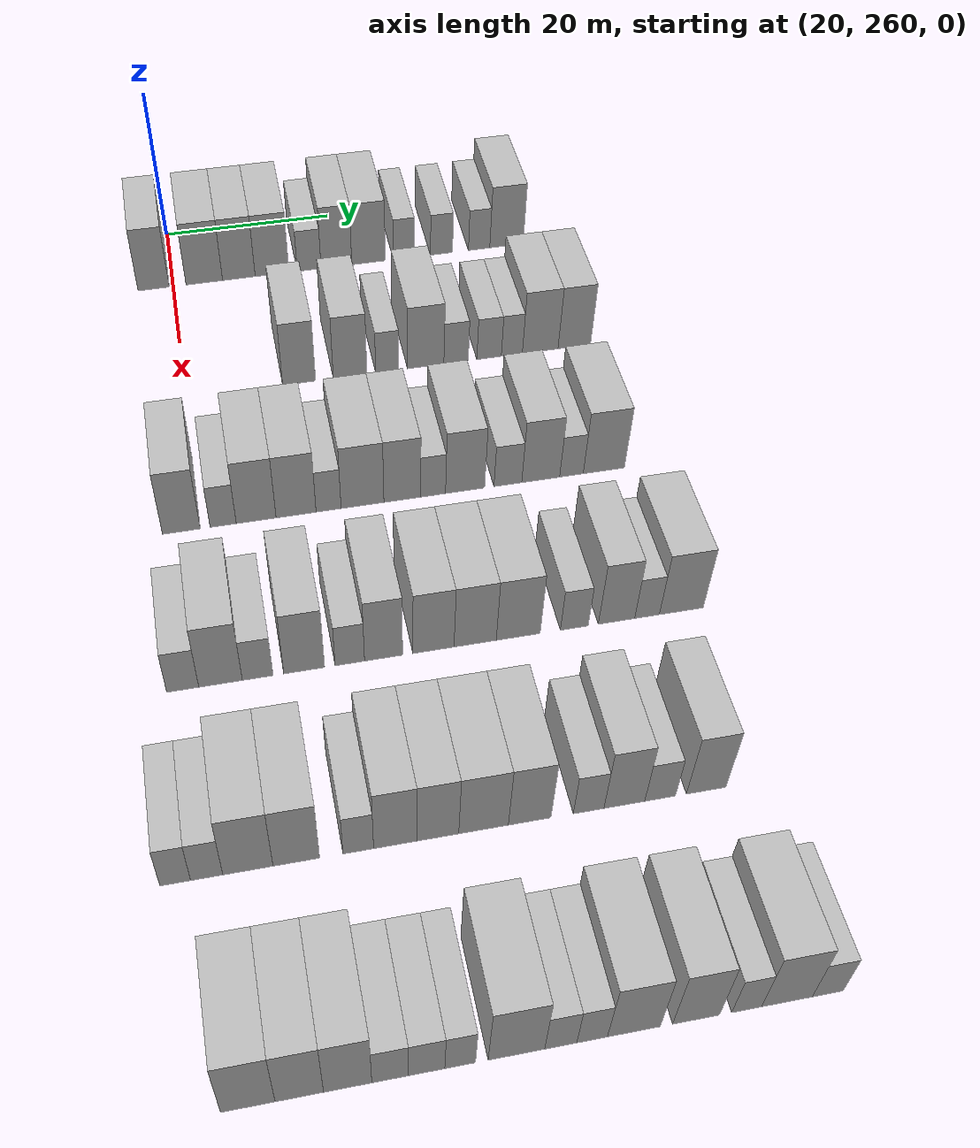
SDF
<sdf version="1.6">
 <world name="default">
  <model name="building_134">
   <static>1</static>
   <pose>25.0000 257.7047 0 0.000000 0.000000 0.000000</pose>
   <link name="link">
    <pose>0 0 4.50 0 0 0</pose>
    <collision name="collision"><geometry><box><size>10.0000 3.6983 9.0000</size></box></geometry></collision>
    <visual name="visual">
     <cast_shadows>0</cast_shadows>
     <geometry><box><size>10.0000 3.6983 9.0000</size></box></geometry>
     <material>
      <script>
       <uri>model://HANNAS_wall/materials/scripts</uri>
       <uri>model://HANNAS_wall/materials/textures</uri>
       <name>vrc/HANNAS_wall</name>
      </script>
     </material>
    </visual>
   </link>
  </model>
  <model name="building_135">
   <static>1</static>
   <pose>25.0000 263.7342 0 0.000000 0.000000 0.000000</pose>
   <link name="link">
    <pose>0 0 4.50 0 0 0</pose>
    <collision name="collision"><geometry><box><size>10.0000 4.3607 9.0000</size></box></geometry></collision>
    <visual name="visual">
     <cast_shadows>0</cast_shadows>
     <geometry><box><size>10.0000 4.3607 9.0000</size></box></geometry>
     <material>
      <script>
       <uri>model://HANNAS_wall/materials/scripts</uri>
       <uri>model://HANNAS_wall/materials/textures</uri>
       <name>vrc/HANNAS_wall</name>
      </script>
     </material>
    </visual>
   </link>
  </model>
  <model name="building_136">
   <static>1</static>
   <pose>25.0000 267.8749 0 0.000000 0.000000 0.000000</pose>
   <link name="link">
    <pose>0 0 4.50 0 0 0</pose>
    <collision name="collision"><geometry><box><size>10.0000 3.9206 9.0000</size></box></geometry></collision>
    <visual name="visual">
     <cast_shadows>0</cast_shadows>
     <geometry><box><size>10.0000 3.9206 9.0000</size></box></geometry>
     <material>
      <script>
       <uri>model://HANNAS_wall/materials/scripts</uri>
       <uri>model://HANNAS_wall/materials/textures</uri>
       <name>vrc/HANNAS_wall</name>
      </script>
     </material>
    </visual>
   </link>
  </model>
  <model name="building_137">
   <static>1</static>
   <pose>25.0000 271.8761 0 0.000000 0.000000 0.000000</pose>
   <link name="link">
    <pose>0 0 4.50 0 0 0</pose>
    <collision name="collision"><geometry><box><size>10.0000 4.0817 9.0000</size></box></geometry></collision>
    <visual name="visual">
     <cast_shadows>0</cast_shadows>
     <geometry><box><size>10.0000 4.0817 9.0000</size></box></geometry>
     <material>
      <script>
       <uri>model://HANNAS_wall/materials/scripts</uri>
       <uri>model://HANNAS_wall/materials/textures</uri>
       <name>vrc/HANNAS_wall</name>
      </script>
     </material>
    </visual>
   </link>
  </model>
  <model name="building_138">
   <static>1</static>
   <pose>25.0000 276.3675 0 0.000000 0.000000 0.000000</pose>
   <link name="link">
    <pose>0 0 3.00 0 0 0</pose>
    <collision name="collision"><geometry><box><size>10.0000 2.9012 6.0000</size></box></geometry></collision>
    <visual name="visual">
     <cast_shadows>0</cast_shadows>
     <geometry><box><size>10.0000 2.9012 6.0000</size></box></geometry>
     <material>
      <script>
       <uri>model://HANNAS_wall/materials/scripts</uri>
       <uri>model://HANNAS_wall/materials/textures</uri>
       <name>vrc/HANNAS_wall</name>
      </script>
     </material>
    </visual>
   </link>
  </model>
  <model name="building_139">
   <static>1</static>
   <pose>25.0000 279.6939 0 0.000000 0.000000 0.000000</pose>
   <link name="link">
    <pose>0 0 4.50 0 0 0</pose>
    <collision name="collision"><geometry><box><size>10.0000 3.7517 9.0000</size></box></geometry></collision>
    <visual name="visual">
     <cast_shadows>0</cast_shadows>
     <geometry><box><size>10.0000 3.7517 9.0000</size></box></geometry>
     <material>
      <script>
       <uri>model://HANNAS_wall/materials/scripts</uri>
       <uri>model://HANNAS_wall/materials/textures</uri>
       <name>vrc/HANNAS_wall</name>
      </script>
     </material>
    </visual>
   </link>
  </model>
  <model name="building_140">
   <static>1</static>
   <pose>25.0000 283.6290 0 0.000000 0.000000 0.000000</pose>
   <link name="link">
    <pose>0 0 4.50 0 0 0</pose>
    <collision name="collision"><geometry><box><size>10.0000 4.1184 9.0000</size></box></geometry></collision>
    <visual name="visual">
     <cast_shadows>0</cast_shadows>
     <geometry><box><size>10.0000 4.1184 9.0000</size></box></geometry>
     <material>
      <script>
       <uri>model://HANNAS_wall/materials/scripts</uri>
       <uri>model://HANNAS_wall/materials/textures</uri>
       <name>vrc/HANNAS_wall</name>
      </script>
     </material>
    </visual>
   </link>
  </model>
  <model name="building_141">
   <static>1</static>
   <pose>25.0000 287.9828 0 0.000000 0.000000 0.000000</pose>
   <link name="link">
    <pose>0 0 3.00 0 0 0</pose>
    <collision name="collision"><geometry><box><size>10.0000 2.5893 6.0000</size></box></geometry></collision>
    <visual name="visual">
     <cast_shadows>0</cast_shadows>
     <geometry><box><size>10.0000 2.5893 6.0000</size></box></geometry>
     <material>
      <script>
       <uri>model://HANNAS_wall/materials/scripts</uri>
       <uri>model://HANNAS_wall/materials/textures</uri>
       <name>vrc/HANNAS_wall</name>
      </script>
     </material>
    </visual>
   </link>
  </model>
  <model name="building_142">
   <static>1</static>
   <pose>25.0000 292.6498 0 0.000000 0.000000 0.000000</pose>
   <link name="link">
    <pose>0 0 3.00 0 0 0</pose>
    <collision name="collision"><geometry><box><size>10.0000 2.7445 6.0000</size></box></geometry></collision>
    <visual name="visual">
     <cast_shadows>0</cast_shadows>
     <geometry><box><size>10.0000 2.7445 6.0000</size></box></geometry>
     <material>
      <script>
       <uri>model://HANNAS_wall/materials/scripts</uri>
       <uri>model://HANNAS_wall/materials/textures</uri>
       <name>vrc/HANNAS_wall</name>
      </script>
     </material>
    </visual>
   </link>
  </model>
  <model name="building_143">
   <static>1</static>
   <pose>25.0000 297.3599 0 0.000000 0.000000 0.000000</pose>
   <link name="link">
    <pose>0 0 3.00 0 0 0</pose>
    <collision name="collision"><geometry><box><size>10.0000 2.6757 6.0000</size></box></geometry></collision>
    <visual name="visual">
     <cast_shadows>0</cast_shadows>
     <geometry><box><size>10.0000 2.6757 6.0000</size></box></geometry>
     <material>
      <script>
       <uri>model://HANNAS_wall/materials/scripts</uri>
       <uri>model://HANNAS_wall/materials/textures</uri>
       <name>vrc/HANNAS_wall</name>
      </script>
     </material>
    </visual>
   </link>
  </model>
  <model name="building_144">
   <static>1</static>
   <pose>25.0000 300.7931 0 0.000000 0.000000 0.000000</pose>
   <link name="link">
    <pose>0 0 4.50 0 0 0</pose>
    <collision name="collision"><geometry><box><size>10.0000 4.1907 9.0000</size></box></geometry></collision>
    <visual name="visual">
     <cast_shadows>0</cast_shadows>
     <geometry><box><size>10.0000 4.1907 9.0000</size></box></geometry>
     <material>
      <script>
       <uri>model://HANNAS_wall/materials/scripts</uri>
       <uri>model://HANNAS_wall/materials/textures</uri>
       <name>vrc/HANNAS_wall</name>
      </script>
     </material>
    </visual>
   </link>
  </model>
  <model name="building_303">
   <static>1</static>
   <pose>44.0000 272.5692 0 0.000000 0.000000 0.000000</pose>
   <link name="link">
    <pose>0 0 4.50 0 0 0</pose>
    <collision name="collision"><geometry><box><size>10.0000 3.7088 9.0000</size></box></geometry></collision>
    <visual name="visual">
     <cast_shadows>0</cast_shadows>
     <geometry><box><size>10.0000 3.7088 9.0000</size></box></geometry>
     <material>
      <script>
       <uri>model://HANNAS_wall/materials/scripts</uri>
       <uri>model://HANNAS_wall/materials/textures</uri>
       <name>vrc/HANNAS_wall</name>
      </script>
     </material>
    </visual>
   </link>
  </model>
  <model name="building_304">
   <static>1</static>
   <pose>44.0000 278.3253 0 0.000000 0.000000 0.000000</pose>
   <link name="link">
    <pose>0 0 4.50 0 0 0</pose>
    <collision name="collision"><geometry><box><size>10.0000 3.8035 9.0000</size></box></geometry></collision>
    <visual name="visual">
     <cast_shadows>0</cast_shadows>
     <geometry><box><size>10.0000 3.8035 9.0000</size></box></geometry>
     <material>
      <script>
       <uri>model://HANNAS_wall/materials/scripts</uri>
       <uri>model://HANNAS_wall/materials/textures</uri>
       <name>vrc/HANNAS_wall</name>
      </script>
     </material>
    </visual>
   </link>
  </model>
  <model name="building_305">
   <static>1</static>
   <pose>44.0000 282.5472 0 0.000000 0.000000 0.000000</pose>
   <link name="link">
    <pose>0 0 3.00 0 0 0</pose>
    <collision name="collision"><geometry><box><size>10.0000 2.6402 6.0000</size></box></geometry></collision>
    <visual name="visual">
     <cast_shadows>0</cast_shadows>
     <geometry><box><size>10.0000 2.6402 6.0000</size></box></geometry>
     <material>
      <script>
       <uri>model://HANNAS_wall/materials/scripts</uri>
       <uri>model://HANNAS_wall/materials/textures</uri>
       <name>vrc/HANNAS_wall</name>
      </script>
     </material>
    </visual>
   </link>
  </model>
  <model name="building_306">
   <static>1</static>
   <pose>44.0000 286.9544 0 0.000000 0.000000 0.000000</pose>
   <link name="link">
    <pose>0 0 4.50 0 0 0</pose>
    <collision name="collision"><geometry><box><size>10.0000 4.1742 9.0000</size></box></geometry></collision>
    <visual name="visual">
     <cast_shadows>0</cast_shadows>
     <geometry><box><size>10.0000 4.1742 9.0000</size></box></geometry>
     <material>
      <script>
       <uri>model://HANNAS_wall/materials/scripts</uri>
       <uri>model://HANNAS_wall/materials/textures</uri>
       <name>vrc/HANNAS_wall</name>
      </script>
     </material>
    </visual>
   </link>
  </model>
  <model name="building_307">
   <static>1</static>
   <pose>44.0000 290.4517 0 0.000000 0.000000 0.000000</pose>
   <link name="link">
    <pose>0 0 3.00 0 0 0</pose>
    <collision name="collision"><geometry><box><size>10.0000 2.8204 6.0000</size></box></geometry></collision>
    <visual name="visual">
     <cast_shadows>0</cast_shadows>
     <geometry><box><size>10.0000 2.8204 6.0000</size></box></geometry>
     <material>
      <script>
       <uri>model://HANNAS_wall/materials/scripts</uri>
       <uri>model://HANNAS_wall/materials/textures</uri>
       <name>vrc/HANNAS_wall</name>
      </script>
     </material>
    </visual>
   </link>
  </model>
  <model name="building_308">
   <static>1</static>
   <pose>44.0000 294.2804 0 0.000000 0.000000 0.000000</pose>
   <link name="link">
    <pose>0 0 3.00 0 0 0</pose>
    <collision name="collision"><geometry><box><size>10.0000 2.8369 6.0000</size></box></geometry></collision>
    <visual name="visual">
     <cast_shadows>0</cast_shadows>
     <geometry><box><size>10.0000 2.8369 6.0000</size></box></geometry>
     <material>
      <script>
       <uri>model://HANNAS_wall/materials/scripts</uri>
       <uri>model://HANNAS_wall/materials/textures</uri>
       <name>vrc/HANNAS_wall</name>
      </script>
     </material>
    </visual>
   </link>
  </model>
  <model name="building_309">
   <static>1</static>
   <pose>44.0000 296.9283 0 0.000000 0.000000 0.000000</pose>
   <link name="link">
    <pose>0 0 3.00 0 0 0</pose>
    <collision name="collision"><geometry><box><size>10.0000 2.4589 6.0000</size></box></geometry></collision>
    <visual name="visual">
     <cast_shadows>0</cast_shadows>
     <geometry><box><size>10.0000 2.4589 6.0000</size></box></geometry>
     <material>
      <script>
       <uri>model://HANNAS_wall/materials/scripts</uri>
       <uri>model://HANNAS_wall/materials/textures</uri>
       <name>vrc/HANNAS_wall</name>
      </script>
     </material>
    </visual>
   </link>
  </model>
  <model name="building_310">
   <static>1</static>
   <pose>44.0000 300.2491 0 0.000000 0.000000 0.000000</pose>
   <link name="link">
    <pose>0 0 4.50 0 0 0</pose>
    <collision name="collision"><geometry><box><size>10.0000 4.1828 9.0000</size></box></geometry></collision>
    <visual name="visual">
     <cast_shadows>0</cast_shadows>
     <geometry><box><size>10.0000 4.1828 9.0000</size></box></geometry>
     <material>
      <script>
       <uri>model://HANNAS_wall/materials/scripts</uri>
       <uri>model://HANNAS_wall/materials/textures</uri>
       <name>vrc/HANNAS_wall</name>
      </script>
     </material>
    </visual>
   </link>
  </model>
  <model name="building_311">
   <static>1</static>
   <pose>44.0000 304.2567 0 0.000000 0.000000 0.000000</pose>
   <link name="link">
    <pose>0 0 4.50 0 0 0</pose>
    <collision name="collision"><geometry><box><size>10.0000 3.8324 9.0000</size></box></geometry></collision>
    <visual name="visual">
     <cast_shadows>0</cast_shadows>
     <geometry><box><size>10.0000 3.8324 9.0000</size></box></geometry>
     <material>
      <script>
       <uri>model://HANNAS_wall/materials/scripts</uri>
       <uri>model://HANNAS_wall/materials/textures</uri>
       <name>vrc/HANNAS_wall</name>
      </script>
     </material>
    </visual>
   </link>
  </model>
  <model name="building_472">
   <static>1</static>
   <pose>63.0000 257.9530 0 0.000000 0.000000 0.000000</pose>
   <link name="link">
    <pose>0 0 4.50 0 0 0</pose>
    <collision name="collision"><geometry><box><size>10.0000 3.8242 9.0000</size></box></geometry></collision>
    <visual name="visual">
     <cast_shadows>0</cast_shadows>
     <geometry><box><size>10.0000 3.8242 9.0000</size></box></geometry>
     <material>
      <script>
       <uri>model://HANNAS_wall/materials/scripts</uri>
       <uri>model://HANNAS_wall/materials/textures</uri>
       <name>vrc/HANNAS_wall</name>
      </script>
     </material>
    </visual>
   </link>
  </model>
  <model name="building_473">
   <static>1</static>
   <pose>63.0000 262.1993 0 0.000000 0.000000 0.000000</pose>
   <link name="link">
    <pose>0 0 3.00 0 0 0</pose>
    <collision name="collision"><geometry><box><size>10.0000 2.6685 6.0000</size></box></geometry></collision>
    <visual name="visual">
     <cast_shadows>0</cast_shadows>
     <geometry><box><size>10.0000 2.6685 6.0000</size></box></geometry>
     <material>
      <script>
       <uri>model://HANNAS_wall/materials/scripts</uri>
       <uri>model://HANNAS_wall/materials/textures</uri>
       <name>vrc/HANNAS_wall</name>
      </script>
     </material>
    </visual>
   </link>
  </model>
  <model name="building_474">
   <static>1</static>
   <pose>63.0000 265.5748 0 0.000000 0.000000 0.000000</pose>
   <link name="link">
    <pose>0 0 4.50 0 0 0</pose>
    <collision name="collision"><geometry><box><size>10.0000 4.0825 9.0000</size></box></geometry></collision>
    <visual name="visual">
     <cast_shadows>0</cast_shadows>
     <geometry><box><size>10.0000 4.0825 9.0000</size></box></geometry>
     <material>
      <script>
       <uri>model://HANNAS_wall/materials/scripts</uri>
       <uri>model://HANNAS_wall/materials/textures</uri>
       <name>vrc/HANNAS_wall</name>
      </script>
     </material>
    </visual>
   </link>
  </model>
  <model name="building_475">
   <static>1</static>
   <pose>63.0000 269.6821 0 0.000000 0.000000 0.000000</pose>
   <link name="link">
    <pose>0 0 4.50 0 0 0</pose>
    <collision name="collision"><geometry><box><size>10.0000 4.1322 9.0000</size></box></geometry></collision>
    <visual name="visual">
     <cast_shadows>0</cast_shadows>
     <geometry><box><size>10.0000 4.1322 9.0000</size></box></geometry>
     <material>
      <script>
       <uri>model://HANNAS_wall/materials/scripts</uri>
       <uri>model://HANNAS_wall/materials/textures</uri>
       <name>vrc/HANNAS_wall</name>
      </script>
     </material>
    </visual>
   </link>
  </model>
  <model name="building_476">
   <static>1</static>
   <pose>63.0000 273.0468 0 0.000000 0.000000 0.000000</pose>
   <link name="link">
    <pose>0 0 3.00 0 0 0</pose>
    <collision name="collision"><geometry><box><size>10.0000 2.5972 6.0000</size></box></geometry></collision>
    <visual name="visual">
     <cast_shadows>0</cast_shadows>
     <geometry><box><size>10.0000 2.5972 6.0000</size></box></geometry>
     <material>
      <script>
       <uri>model://HANNAS_wall/materials/scripts</uri>
       <uri>model://HANNAS_wall/materials/textures</uri>
       <name>vrc/HANNAS_wall</name>
      </script>
     </material>
    </visual>
   </link>
  </model>
  <model name="building_477">
   <static>1</static>
   <pose>63.0000 276.5807 0 0.000000 0.000000 0.000000</pose>
   <link name="link">
    <pose>0 0 4.50 0 0 0</pose>
    <collision name="collision"><geometry><box><size>10.0000 4.4706 9.0000</size></box></geometry></collision>
    <visual name="visual">
     <cast_shadows>0</cast_shadows>
     <geometry><box><size>10.0000 4.4706 9.0000</size></box></geometry>
     <material>
      <script>
       <uri>model://HANNAS_wall/materials/scripts</uri>
       <uri>model://HANNAS_wall/materials/textures</uri>
       <name>vrc/HANNAS_wall</name>
      </script>
     </material>
    </visual>
   </link>
  </model>
  <model name="building_478">
   <static>1</static>
   <pose>63.0000 280.7459 0 0.000000 0.000000 0.000000</pose>
   <link name="link">
    <pose>0 0 4.50 0 0 0</pose>
    <collision name="collision"><geometry><box><size>10.0000 3.8598 9.0000</size></box></geometry></collision>
    <visual name="visual">
     <cast_shadows>0</cast_shadows>
     <geometry><box><size>10.0000 3.8598 9.0000</size></box></geometry>
     <material>
      <script>
       <uri>model://HANNAS_wall/materials/scripts</uri>
       <uri>model://HANNAS_wall/materials/textures</uri>
       <name>vrc/HANNAS_wall</name>
      </script>
     </material>
    </visual>
   </link>
  </model>
  <model name="building_479">
   <static>1</static>
   <pose>63.0000 283.9945 0 0.000000 0.000000 0.000000</pose>
   <link name="link">
    <pose>0 0 3.00 0 0 0</pose>
    <collision name="collision"><geometry><box><size>10.0000 2.6374 6.0000</size></box></geometry></collision>
    <visual name="visual">
     <cast_shadows>0</cast_shadows>
     <geometry><box><size>10.0000 2.6374 6.0000</size></box></geometry>
     <material>
      <script>
       <uri>model://HANNAS_wall/materials/scripts</uri>
       <uri>model://HANNAS_wall/materials/textures</uri>
       <name>vrc/HANNAS_wall</name>
      </script>
     </material>
    </visual>
   </link>
  </model>
  <model name="building_480">
   <static>1</static>
   <pose>63.0000 287.3932 0 0.000000 0.000000 0.000000</pose>
   <link name="link">
    <pose>0 0 4.50 0 0 0</pose>
    <collision name="collision"><geometry><box><size>10.0000 4.1599 9.0000</size></box></geometry></collision>
    <visual name="visual">
     <cast_shadows>0</cast_shadows>
     <geometry><box><size>10.0000 4.1599 9.0000</size></box></geometry>
     <material>
      <script>
       <uri>model://HANNAS_wall/materials/scripts</uri>
       <uri>model://HANNAS_wall/materials/textures</uri>
       <name>vrc/HANNAS_wall</name>
      </script>
     </material>
    </visual>
   </link>
  </model>
  <model name="building_481">
   <static>1</static>
   <pose>63.0000 291.9643 0 0.000000 0.000000 0.000000</pose>
   <link name="link">
    <pose>0 0 3.00 0 0 0</pose>
    <collision name="collision"><geometry><box><size>10.0000 2.9823 6.0000</size></box></geometry></collision>
    <visual name="visual">
     <cast_shadows>0</cast_shadows>
     <geometry><box><size>10.0000 2.9823 6.0000</size></box></geometry>
     <material>
      <script>
       <uri>model://HANNAS_wall/materials/scripts</uri>
       <uri>model://HANNAS_wall/materials/textures</uri>
       <name>vrc/HANNAS_wall</name>
      </script>
     </material>
    </visual>
   </link>
  </model>
  <model name="building_482">
   <static>1</static>
   <pose>63.0000 295.4975 0 0.000000 0.000000 0.000000</pose>
   <link name="link">
    <pose>0 0 4.50 0 0 0</pose>
    <collision name="collision"><geometry><box><size>10.0000 4.0841 9.0000</size></box></geometry></collision>
    <visual name="visual">
     <cast_shadows>0</cast_shadows>
     <geometry><box><size>10.0000 4.0841 9.0000</size></box></geometry>
     <material>
      <script>
       <uri>model://HANNAS_wall/materials/scripts</uri>
       <uri>model://HANNAS_wall/materials/textures</uri>
       <name>vrc/HANNAS_wall</name>
      </script>
     </material>
    </visual>
   </link>
  </model>
  <model name="building_483">
   <static>1</static>
   <pose>63.0000 298.8185 0 0.000000 0.000000 0.000000</pose>
   <link name="link">
    <pose>0 0 3.00 0 0 0</pose>
    <collision name="collision"><geometry><box><size>10.0000 2.5579 6.0000</size></box></geometry></collision>
    <visual name="visual">
     <cast_shadows>0</cast_shadows>
     <geometry><box><size>10.0000 2.5579 6.0000</size></box></geometry>
     <material>
      <script>
       <uri>model://HANNAS_wall/materials/scripts</uri>
       <uri>model://HANNAS_wall/materials/textures</uri>
       <name>vrc/HANNAS_wall</name>
      </script>
     </material>
    </visual>
   </link>
  </model>
  <model name="building_484">
   <static>1</static>
   <pose>63.0000 302.3394 0 0.000000 0.000000 0.000000</pose>
   <link name="link">
    <pose>0 0 4.50 0 0 0</pose>
    <collision name="collision"><geometry><box><size>10.0000 4.4839 9.0000</size></box></geometry></collision>
    <visual name="visual">
     <cast_shadows>0</cast_shadows>
     <geometry><box><size>10.0000 4.4839 9.0000</size></box></geometry>
     <material>
      <script>
       <uri>model://HANNAS_wall/materials/scripts</uri>
       <uri>model://HANNAS_wall/materials/textures</uri>
       <name>vrc/HANNAS_wall</name>
      </script>
     </material>
    </visual>
   </link>
  </model>
  <model name="building_654">
   <static>1</static>
   <pose>82.0000 256.5584 0 0.000000 0.000000 0.000000</pose>
   <link name="link">
    <pose>0 0 3.00 0 0 0</pose>
    <collision name="collision"><geometry><box><size>10.0000 2.9625 6.0000</size></box></geometry></collision>
    <visual name="visual">
     <cast_shadows>0</cast_shadows>
     <geometry><box><size>10.0000 2.9625 6.0000</size></box></geometry>
     <material>
      <script>
       <uri>model://HANNAS_wall/materials/scripts</uri>
       <uri>model://HANNAS_wall/materials/textures</uri>
       <name>vrc/HANNAS_wall</name>
      </script>
     </material>
    </visual>
   </link>
  </model>
  <model name="building_655">
   <static>1</static>
   <pose>82.0000 260.0614 0 0.000000 0.000000 0.000000</pose>
   <link name="link">
    <pose>0 0 4.50 0 0 0</pose>
    <collision name="collision"><geometry><box><size>10.0000 4.0435 9.0000</size></box></geometry></collision>
    <visual name="visual">
     <cast_shadows>0</cast_shadows>
     <geometry><box><size>10.0000 4.0435 9.0000</size></box></geometry>
     <material>
      <script>
       <uri>model://HANNAS_wall/materials/scripts</uri>
       <uri>model://HANNAS_wall/materials/textures</uri>
       <name>vrc/HANNAS_wall</name>
      </script>
     </material>
    </visual>
   </link>
  </model>
  <model name="building_656">
   <static>1</static>
   <pose>82.0000 263.5239 0 0.000000 0.000000 0.000000</pose>
   <link name="link">
    <pose>0 0 3.00 0 0 0</pose>
    <collision name="collision"><geometry><box><size>10.0000 2.8816 6.0000</size></box></geometry></collision>
    <visual name="visual">
     <cast_shadows>0</cast_shadows>
     <geometry><box><size>10.0000 2.8816 6.0000</size></box></geometry>
     <material>
      <script>
       <uri>model://HANNAS_wall/materials/scripts</uri>
       <uri>model://HANNAS_wall/materials/textures</uri>
       <name>vrc/HANNAS_wall</name>
      </script>
     </material>
    </visual>
   </link>
  </model>
  <model name="building_657">
   <static>1</static>
   <pose>82.0000 267.8923 0 0.000000 0.000000 0.000000</pose>
   <link name="link">
    <pose>0 0 4.50 0 0 0</pose>
    <collision name="collision"><geometry><box><size>10.0000 3.8551 9.0000</size></box></geometry></collision>
    <visual name="visual">
     <cast_shadows>0</cast_shadows>
     <geometry><box><size>10.0000 3.8551 9.0000</size></box></geometry>
     <material>
      <script>
       <uri>model://HANNAS_wall/materials/scripts</uri>
       <uri>model://HANNAS_wall/materials/textures</uri>
       <name>vrc/HANNAS_wall</name>
      </script>
     </material>
    </visual>
   </link>
  </model>
  <model name="building_658">
   <static>1</static>
   <pose>82.0000 272.2180 0 0.000000 0.000000 0.000000</pose>
   <link name="link">
    <pose>0 0 3.00 0 0 0</pose>
    <collision name="collision"><geometry><box><size>10.0000 2.7964 6.0000</size></box></geometry></collision>
    <visual name="visual">
     <cast_shadows>0</cast_shadows>
     <geometry><box><size>10.0000 2.7964 6.0000</size></box></geometry>
     <material>
      <script>
       <uri>model://HANNAS_wall/materials/scripts</uri>
       <uri>model://HANNAS_wall/materials/textures</uri>
       <name>vrc/HANNAS_wall</name>
      </script>
     </material>
    </visual>
   </link>
  </model>
  <model name="building_659">
   <static>1</static>
   <pose>82.0000 275.4319 0 0.000000 0.000000 0.000000</pose>
   <link name="link">
    <pose>0 0 4.50 0 0 0</pose>
    <collision name="collision"><geometry><box><size>10.0000 3.6313 9.0000</size></box></geometry></collision>
    <visual name="visual">
     <cast_shadows>0</cast_shadows>
     <geometry><box><size>10.0000 3.6313 9.0000</size></box></geometry>
     <material>
      <script>
       <uri>model://HANNAS_wall/materials/scripts</uri>
       <uri>model://HANNAS_wall/materials/textures</uri>
       <name>vrc/HANNAS_wall</name>
      </script>
     </material>
    </visual>
   </link>
  </model>
  <model name="building_660">
   <static>1</static>
   <pose>82.0000 280.2320 0 0.000000 0.000000 0.000000</pose>
   <link name="link">
    <pose>0 0 4.50 0 0 0</pose>
    <collision name="collision"><geometry><box><size>10.0000 3.9688 9.0000</size></box></geometry></collision>
    <visual name="visual">
     <cast_shadows>0</cast_shadows>
     <geometry><box><size>10.0000 3.9688 9.0000</size></box></geometry>
     <material>
      <script>
       <uri>model://HANNAS_wall/materials/scripts</uri>
       <uri>model://HANNAS_wall/materials/textures</uri>
       <name>vrc/HANNAS_wall</name>
      </script>
     </material>
    </visual>
   </link>
  </model>
  <model name="building_661">
   <static>1</static>
   <pose>82.0000 284.2684 0 0.000000 0.000000 0.000000</pose>
   <link name="link">
    <pose>0 0 4.50 0 0 0</pose>
    <collision name="collision"><geometry><box><size>10.0000 4.1041 9.0000</size></box></geometry></collision>
    <visual name="visual">
     <cast_shadows>0</cast_shadows>
     <geometry><box><size>10.0000 4.1041 9.0000</size></box></geometry>
     <material>
      <script>
       <uri>model://HANNAS_wall/materials/scripts</uri>
       <uri>model://HANNAS_wall/materials/textures</uri>
       <name>vrc/HANNAS_wall</name>
      </script>
     </material>
    </visual>
   </link>
  </model>
  <model name="building_662">
   <static>1</static>
   <pose>82.0000 288.4702 0 0.000000 0.000000 0.000000</pose>
   <link name="link">
    <pose>0 0 4.50 0 0 0</pose>
    <collision name="collision"><geometry><box><size>10.0000 4.2995 9.0000</size></box></geometry></collision>
    <visual name="visual">
     <cast_shadows>0</cast_shadows>
     <geometry><box><size>10.0000 4.2995 9.0000</size></box></geometry>
     <material>
      <script>
       <uri>model://HANNAS_wall/materials/scripts</uri>
       <uri>model://HANNAS_wall/materials/textures</uri>
       <name>vrc/HANNAS_wall</name>
      </script>
     </material>
    </visual>
   </link>
  </model>
  <model name="building_663">
   <static>1</static>
   <pose>82.0000 293.9989 0 0.000000 0.000000 0.000000</pose>
   <link name="link">
    <pose>0 0 3.00 0 0 0</pose>
    <collision name="collision"><geometry><box><size>10.0000 2.7579 6.0000</size></box></geometry></collision>
    <visual name="visual">
     <cast_shadows>0</cast_shadows>
     <geometry><box><size>10.0000 2.7579 6.0000</size></box></geometry>
     <material>
      <script>
       <uri>model://HANNAS_wall/materials/scripts</uri>
       <uri>model://HANNAS_wall/materials/textures</uri>
       <name>vrc/HANNAS_wall</name>
      </script>
     </material>
    </visual>
   </link>
  </model>
  <model name="building_664">
   <static>1</static>
   <pose>82.0000 298.1905 0 0.000000 0.000000 0.000000</pose>
   <link name="link">
    <pose>0 0 4.50 0 0 0</pose>
    <collision name="collision"><geometry><box><size>10.0000 3.6254 9.0000</size></box></geometry></collision>
    <visual name="visual">
     <cast_shadows>0</cast_shadows>
     <geometry><box><size>10.0000 3.6254 9.0000</size></box></geometry>
     <material>
      <script>
       <uri>model://HANNAS_wall/materials/scripts</uri>
       <uri>model://HANNAS_wall/materials/textures</uri>
       <name>vrc/HANNAS_wall</name>
      </script>
     </material>
    </visual>
   </link>
  </model>
  <model name="building_665">
   <static>1</static>
   <pose>82.0000 301.2448 0 0.000000 0.000000 0.000000</pose>
   <link name="link">
    <pose>0 0 3.00 0 0 0</pose>
    <collision name="collision"><geometry><box><size>10.0000 2.4832 6.0000</size></box></geometry></collision>
    <visual name="visual">
     <cast_shadows>0</cast_shadows>
     <geometry><box><size>10.0000 2.4832 6.0000</size></box></geometry>
     <material>
      <script>
       <uri>model://HANNAS_wall/materials/scripts</uri>
       <uri>model://HANNAS_wall/materials/textures</uri>
       <name>vrc/HANNAS_wall</name>
      </script>
     </material>
    </visual>
   </link>
  </model>
  <model name="building_666">
   <static>1</static>
   <pose>82.0000 304.6992 0 0.000000 0.000000 0.000000</pose>
   <link name="link">
    <pose>0 0 4.50 0 0 0</pose>
    <collision name="collision"><geometry><box><size>10.0000 4.4255 9.0000</size></box></geometry></collision>
    <visual name="visual">
     <cast_shadows>0</cast_shadows>
     <geometry><box><size>10.0000 4.4255 9.0000</size></box></geometry>
     <material>
      <script>
       <uri>model://HANNAS_wall/materials/scripts</uri>
       <uri>model://HANNAS_wall/materials/textures</uri>
       <name>vrc/HANNAS_wall</name>
      </script>
     </material>
    </visual>
   </link>
  </model>
  <model name="building_827">
   <static>1</static>
   <pose>101.0000 254.3994 0 0.000000 0.000000 0.000000</pose>
   <link name="link">
    <pose>0 0 3.00 0 0 0</pose>
    <collision name="collision"><geometry><box><size>10.0000 2.5670 6.0000</size></box></geometry></collision>
    <visual name="visual">
     <cast_shadows>0</cast_shadows>
     <geometry><box><size>10.0000 2.5670 6.0000</size></box></geometry>
     <material>
      <script>
       <uri>model://HANNAS_wall/materials/scripts</uri>
       <uri>model://HANNAS_wall/materials/textures</uri>
       <name>vrc/HANNAS_wall</name>
      </script>
     </material>
    </visual>
   </link>
  </model>
  <model name="building_828">
   <static>1</static>
   <pose>101.0000 257.0303 0 0.000000 0.000000 0.000000</pose>
   <link name="link">
    <pose>0 0 3.00 0 0 0</pose>
    <collision name="collision"><geometry><box><size>10.0000 2.6950 6.0000</size></box></geometry></collision>
    <visual name="visual">
     <cast_shadows>0</cast_shadows>
     <geometry><box><size>10.0000 2.6950 6.0000</size></box></geometry>
     <material>
      <script>
       <uri>model://HANNAS_wall/materials/scripts</uri>
       <uri>model://HANNAS_wall/materials/textures</uri>
       <name>vrc/HANNAS_wall</name>
      </script>
     </material>
    </visual>
   </link>
  </model>
  <model name="building_829">
   <static>1</static>
   <pose>101.0000 260.4966 0 0.000000 0.000000 0.000000</pose>
   <link name="link">
    <pose>0 0 4.50 0 0 0</pose>
    <collision name="collision"><geometry><box><size>10.0000 4.2375 9.0000</size></box></geometry></collision>
    <visual name="visual">
     <cast_shadows>0</cast_shadows>
     <geometry><box><size>10.0000 4.2375 9.0000</size></box></geometry>
     <material>
      <script>
       <uri>model://HANNAS_wall/materials/scripts</uri>
       <uri>model://HANNAS_wall/materials/textures</uri>
       <name>vrc/HANNAS_wall</name>
      </script>
     </material>
    </visual>
   </link>
  </model>
  <model name="building_830">
   <static>1</static>
   <pose>101.0000 264.5998 0 0.000000 0.000000 0.000000</pose>
   <link name="link">
    <pose>0 0 4.50 0 0 0</pose>
    <collision name="collision"><geometry><box><size>10.0000 3.9690 9.0000</size></box></geometry></collision>
    <visual name="visual">
     <cast_shadows>0</cast_shadows>
     <geometry><box><size>10.0000 3.9690 9.0000</size></box></geometry>
     <material>
      <script>
       <uri>model://HANNAS_wall/materials/scripts</uri>
       <uri>model://HANNAS_wall/materials/textures</uri>
       <name>vrc/HANNAS_wall</name>
      </script>
     </material>
    </visual>
   </link>
  </model>
  <model name="building_831">
   <static>1</static>
   <pose>101.0000 269.9026 0 0.000000 0.000000 0.000000</pose>
   <link name="link">
    <pose>0 0 3.00 0 0 0</pose>
    <collision name="collision"><geometry><box><size>10.0000 2.6367 6.0000</size></box></geometry></collision>
    <visual name="visual">
     <cast_shadows>0</cast_shadows>
     <geometry><box><size>10.0000 2.6367 6.0000</size></box></geometry>
     <material>
      <script>
       <uri>model://HANNAS_wall/materials/scripts</uri>
       <uri>model://HANNAS_wall/materials/textures</uri>
       <name>vrc/HANNAS_wall</name>
      </script>
     </material>
    </visual>
   </link>
  </model>
  <model name="building_832">
   <static>1</static>
   <pose>101.0000 273.0955 0 0.000000 0.000000 0.000000</pose>
   <link name="link">
    <pose>0 0 4.50 0 0 0</pose>
    <collision name="collision"><geometry><box><size>10.0000 3.7491 9.0000</size></box></geometry></collision>
    <visual name="visual">
     <cast_shadows>0</cast_shadows>
     <geometry><box><size>10.0000 3.7491 9.0000</size></box></geometry>
     <material>
      <script>
       <uri>model://HANNAS_wall/materials/scripts</uri>
       <uri>model://HANNAS_wall/materials/textures</uri>
       <name>vrc/HANNAS_wall</name>
      </script>
     </material>
    </visual>
   </link>
  </model>
  <model name="building_833">
   <static>1</static>
   <pose>101.0000 276.7984 0 0.000000 0.000000 0.000000</pose>
   <link name="link">
    <pose>0 0 4.50 0 0 0</pose>
    <collision name="collision"><geometry><box><size>10.0000 3.6566 9.0000</size></box></geometry></collision>
    <visual name="visual">
     <cast_shadows>0</cast_shadows>
     <geometry><box><size>10.0000 3.6566 9.0000</size></box></geometry>
     <material>
      <script>
       <uri>model://HANNAS_wall/materials/scripts</uri>
       <uri>model://HANNAS_wall/materials/textures</uri>
       <name>vrc/HANNAS_wall</name>
      </script>
     </material>
    </visual>
   </link>
  </model>
  <model name="building_834">
   <static>1</static>
   <pose>101.0000 280.8098 0 0.000000 0.000000 0.000000</pose>
   <link name="link">
    <pose>0 0 4.50 0 0 0</pose>
    <collision name="collision"><geometry><box><size>10.0000 4.3662 9.0000</size></box></geometry></collision>
    <visual name="visual">
     <cast_shadows>0</cast_shadows>
     <geometry><box><size>10.0000 4.3662 9.0000</size></box></geometry>
     <material>
      <script>
       <uri>model://HANNAS_wall/materials/scripts</uri>
       <uri>model://HANNAS_wall/materials/textures</uri>
       <name>vrc/HANNAS_wall</name>
      </script>
     </material>
    </visual>
   </link>
  </model>
  <model name="building_835">
   <static>1</static>
   <pose>101.0000 284.8832 0 0.000000 0.000000 0.000000</pose>
   <link name="link">
    <pose>0 0 4.50 0 0 0</pose>
    <collision name="collision"><geometry><box><size>10.0000 3.7807 9.0000</size></box></geometry></collision>
    <visual name="visual">
     <cast_shadows>0</cast_shadows>
     <geometry><box><size>10.0000 3.7807 9.0000</size></box></geometry>
     <material>
      <script>
       <uri>model://HANNAS_wall/materials/scripts</uri>
       <uri>model://HANNAS_wall/materials/textures</uri>
       <name>vrc/HANNAS_wall</name>
      </script>
     </material>
    </visual>
   </link>
  </model>
  <model name="building_836">
   <static>1</static>
   <pose>101.0000 290.1466 0 0.000000 0.000000 0.000000</pose>
   <link name="link">
    <pose>0 0 3.00 0 0 0</pose>
    <collision name="collision"><geometry><box><size>10.0000 2.7459 6.0000</size></box></geometry></collision>
    <visual name="visual">
     <cast_shadows>0</cast_shadows>
     <geometry><box><size>10.0000 2.7459 6.0000</size></box></geometry>
     <material>
      <script>
       <uri>model://HANNAS_wall/materials/scripts</uri>
       <uri>model://HANNAS_wall/materials/textures</uri>
       <name>vrc/HANNAS_wall</name>
      </script>
     </material>
    </visual>
   </link>
  </model>
  <model name="building_837">
   <static>1</static>
   <pose>101.0000 293.3606 0 0.000000 0.000000 0.000000</pose>
   <link name="link">
    <pose>0 0 4.50 0 0 0</pose>
    <collision name="collision"><geometry><box><size>10.0000 3.6821 9.0000</size></box></geometry></collision>
    <visual name="visual">
     <cast_shadows>0</cast_shadows>
     <geometry><box><size>10.0000 3.6821 9.0000</size></box></geometry>
     <material>
      <script>
       <uri>model://HANNAS_wall/materials/scripts</uri>
       <uri>model://HANNAS_wall/materials/textures</uri>
       <name>vrc/HANNAS_wall</name>
      </script>
     </material>
    </visual>
   </link>
  </model>
  <model name="building_838">
   <static>1</static>
   <pose>101.0000 296.6012 0 0.000000 0.000000 0.000000</pose>
   <link name="link">
    <pose>0 0 3.00 0 0 0</pose>
    <collision name="collision"><geometry><box><size>10.0000 2.7990 6.0000</size></box></geometry></collision>
    <visual name="visual">
     <cast_shadows>0</cast_shadows>
     <geometry><box><size>10.0000 2.7990 6.0000</size></box></geometry>
     <material>
      <script>
       <uri>model://HANNAS_wall/materials/scripts</uri>
       <uri>model://HANNAS_wall/materials/textures</uri>
       <name>vrc/HANNAS_wall</name>
      </script>
     </material>
    </visual>
   </link>
  </model>
  <model name="building_839">
   <static>1</static>
   <pose>101.0000 300.8102 0 0.000000 0.000000 0.000000</pose>
   <link name="link">
    <pose>0 0 4.50 0 0 0</pose>
    <collision name="collision"><geometry><box><size>10.0000 3.6190 9.0000</size></box></geometry></collision>
    <visual name="visual">
     <cast_shadows>0</cast_shadows>
     <geometry><box><size>10.0000 3.6190 9.0000</size></box></geometry>
     <material>
      <script>
       <uri>model://HANNAS_wall/materials/scripts</uri>
       <uri>model://HANNAS_wall/materials/textures</uri>
       <name>vrc/HANNAS_wall</name>
      </script>
     </material>
    </visual>
   </link>
  </model>
  <model name="building_996">
   <static>1</static>
   <pose>120.0000 258.3756 0 0.000000 0.000000 0.000000</pose>
   <link name="link">
    <pose>0 0 4.50 0 0 0</pose>
    <collision name="collision"><geometry><box><size>10.0000 4.1218 9.0000</size></box></geometry></collision>
    <visual name="visual">
     <cast_shadows>0</cast_shadows>
     <geometry><box><size>10.0000 4.1218 9.0000</size></box></geometry>
     <material>
      <script>
       <uri>model://HANNAS_wall/materials/scripts</uri>
       <uri>model://HANNAS_wall/materials/textures</uri>
       <name>vrc/HANNAS_wall</name>
      </script>
     </material>
    </visual>
   </link>
  </model>
  <model name="building_997">
   <static>1</static>
   <pose>120.0000 262.2800 0 0.000000 0.000000 0.000000</pose>
   <link name="link">
    <pose>0 0 4.50 0 0 0</pose>
    <collision name="collision"><geometry><box><size>10.0000 3.6869 9.0000</size></box></geometry></collision>
    <visual name="visual">
     <cast_shadows>0</cast_shadows>
     <geometry><box><size>10.0000 3.6869 9.0000</size></box></geometry>
     <material>
      <script>
       <uri>model://HANNAS_wall/materials/scripts</uri>
       <uri>model://HANNAS_wall/materials/textures</uri>
       <name>vrc/HANNAS_wall</name>
      </script>
     </material>
    </visual>
   </link>
  </model>
  <model name="building_998">
   <static>1</static>
   <pose>120.0000 265.9760 0 0.000000 0.000000 0.000000</pose>
   <link name="link">
    <pose>0 0 4.50 0 0 0</pose>
    <collision name="collision"><geometry><box><size>10.0000 3.7051 9.0000</size></box></geometry></collision>
    <visual name="visual">
     <cast_shadows>0</cast_shadows>
     <geometry><box><size>10.0000 3.7051 9.0000</size></box></geometry>
     <material>
      <script>
       <uri>model://HANNAS_wall/materials/scripts</uri>
       <uri>model://HANNAS_wall/materials/textures</uri>
       <name>vrc/HANNAS_wall</name>
      </script>
     </material>
    </visual>
   </link>
  </model>
  <model name="building_999">
   <static>1</static>
   <pose>120.0000 269.2493 0 0.000000 0.000000 0.000000</pose>
   <link name="link">
    <pose>0 0 3.00 0 0 0</pose>
    <collision name="collision"><geometry><box><size>10.0000 2.8416 6.0000</size></box></geometry></collision>
    <visual name="visual">
     <cast_shadows>0</cast_shadows>
     <geometry><box><size>10.0000 2.8416 6.0000</size></box></geometry>
     <material>
      <script>
       <uri>model://HANNAS_wall/materials/scripts</uri>
       <uri>model://HANNAS_wall/materials/textures</uri>
       <name>vrc/HANNAS_wall</name>
      </script>
     </material>
    </visual>
   </link>
  </model>
  <model name="building_1000">
   <static>1</static>
   <pose>120.0000 272.0792 0 0.000000 0.000000 0.000000</pose>
   <link name="link">
    <pose>0 0 3.00 0 0 0</pose>
    <collision name="collision"><geometry><box><size>10.0000 2.8181 6.0000</size></box></geometry></collision>
    <visual name="visual">
     <cast_shadows>0</cast_shadows>
     <geometry><box><size>10.0000 2.8181 6.0000</size></box></geometry>
     <material>
      <script>
       <uri>model://HANNAS_wall/materials/scripts</uri>
       <uri>model://HANNAS_wall/materials/textures</uri>
       <name>vrc/HANNAS_wall</name>
      </script>
     </material>
    </visual>
   </link>
  </model>
  <model name="building_1001">
   <static>1</static>
   <pose>120.0000 274.6893 0 0.000000 0.000000 0.000000</pose>
   <link name="link">
    <pose>0 0 3.00 0 0 0</pose>
    <collision name="collision"><geometry><box><size>10.0000 2.4022 6.0000</size></box></geometry></collision>
    <visual name="visual">
     <cast_shadows>0</cast_shadows>
     <geometry><box><size>10.0000 2.4022 6.0000</size></box></geometry>
     <material>
      <script>
       <uri>model://HANNAS_wall/materials/scripts</uri>
       <uri>model://HANNAS_wall/materials/textures</uri>
       <name>vrc/HANNAS_wall</name>
      </script>
     </material>
    </visual>
   </link>
  </model>
  <model name="building_1002">
   <static>1</static>
   <pose>120.0000 279.1275 0 0.000000 0.000000 0.000000</pose>
   <link name="link">
    <pose>0 0 4.50 0 0 0</pose>
    <collision name="collision"><geometry><box><size>10.0000 4.4742 9.0000</size></box></geometry></collision>
    <visual name="visual">
     <cast_shadows>0</cast_shadows>
     <geometry><box><size>10.0000 4.4742 9.0000</size></box></geometry>
     <material>
      <script>
       <uri>model://HANNAS_wall/materials/scripts</uri>
       <uri>model://HANNAS_wall/materials/textures</uri>
       <name>vrc/HANNAS_wall</name>
      </script>
     </material>
    </visual>
   </link>
  </model>
  <model name="building_1003">
   <static>1</static>
   <pose>120.0000 282.6393 0 0.000000 0.000000 0.000000</pose>
   <link name="link">
    <pose>0 0 3.00 0 0 0</pose>
    <collision name="collision"><geometry><box><size>10.0000 2.5495 6.0000</size></box></geometry></collision>
    <visual name="visual">
     <cast_shadows>0</cast_shadows>
     <geometry><box><size>10.0000 2.5495 6.0000</size></box></geometry>
     <material>
      <script>
       <uri>model://HANNAS_wall/materials/scripts</uri>
       <uri>model://HANNAS_wall/materials/textures</uri>
       <name>vrc/HANNAS_wall</name>
      </script>
     </material>
    </visual>
   </link>
  </model>
  <model name="building_1004">
   <static>1</static>
   <pose>120.0000 285.1457 0 0.000000 0.000000 0.000000</pose>
   <link name="link">
    <pose>0 0 3.00 0 0 0</pose>
    <collision name="collision"><geometry><box><size>10.0000 2.4631 6.0000</size></box></geometry></collision>
    <visual name="visual">
     <cast_shadows>0</cast_shadows>
     <geometry><box><size>10.0000 2.4631 6.0000</size></box></geometry>
     <material>
      <script>
       <uri>model://HANNAS_wall/materials/scripts</uri>
       <uri>model://HANNAS_wall/materials/textures</uri>
       <name>vrc/HANNAS_wall</name>
      </script>
     </material>
    </visual>
   </link>
  </model>
  <model name="building_1005">
   <static>1</static>
   <pose>120.0000 288.5182 0 0.000000 0.000000 0.000000</pose>
   <link name="link">
    <pose>0 0 4.50 0 0 0</pose>
    <collision name="collision"><geometry><box><size>10.0000 4.2820 9.0000</size></box></geometry></collision>
    <visual name="visual">
     <cast_shadows>0</cast_shadows>
     <geometry><box><size>10.0000 4.2820 9.0000</size></box></geometry>
     <material>
      <script>
       <uri>model://HANNAS_wall/materials/scripts</uri>
       <uri>model://HANNAS_wall/materials/textures</uri>
       <name>vrc/HANNAS_wall</name>
      </script>
     </material>
    </visual>
   </link>
  </model>
  <model name="building_1006">
   <static>1</static>
   <pose>120.0000 293.5819 0 0.000000 0.000000 0.000000</pose>
   <link name="link">
    <pose>0 0 4.50 0 0 0</pose>
    <collision name="collision"><geometry><box><size>10.0000 3.8453 9.0000</size></box></geometry></collision>
    <visual name="visual">
     <cast_shadows>0</cast_shadows>
     <geometry><box><size>10.0000 3.8453 9.0000</size></box></geometry>
     <material>
      <script>
       <uri>model://HANNAS_wall/materials/scripts</uri>
       <uri>model://HANNAS_wall/materials/textures</uri>
       <name>vrc/HANNAS_wall</name>
      </script>
     </material>
    </visual>
   </link>
  </model>
  <model name="building_1007">
   <static>1</static>
   <pose>120.0000 297.7389 0 0.000000 0.000000 0.000000</pose>
   <link name="link">
    <pose>0 0 3.00 0 0 0</pose>
    <collision name="collision"><geometry><box><size>10.0000 2.4688 6.0000</size></box></geometry></collision>
    <visual name="visual">
     <cast_shadows>0</cast_shadows>
     <geometry><box><size>10.0000 2.4688 6.0000</size></box></geometry>
     <material>
      <script>
       <uri>model://HANNAS_wall/materials/scripts</uri>
       <uri>model://HANNAS_wall/materials/textures</uri>
       <name>vrc/HANNAS_wall</name>
      </script>
     </material>
    </visual>
   </link>
  </model>
  <model name="building_1008">
   <static>1</static>
   <pose>120.0000 301.0754 0 0.000000 0.000000 0.000000</pose>
   <link name="link">
    <pose>0 0 4.50 0 0 0</pose>
    <collision name="collision"><geometry><box><size>10.0000 4.2041 9.0000</size></box></geometry></collision>
    <visual name="visual">
     <cast_shadows>0</cast_shadows>
     <geometry><box><size>10.0000 4.2041 9.0000</size></box></geometry>
     <material>
      <script>
       <uri>model://HANNAS_wall/materials/scripts</uri>
       <uri>model://HANNAS_wall/materials/textures</uri>
       <name>vrc/HANNAS_wall</name>
      </script>
     </material>
    </visual>
   </link>
  </model>
  <model name="building_1009">
   <static>1</static>
   <pose>120.0000 304.4792 0 0.000000 0.000000 0.000000</pose>
   <link name="link">
    <pose>0 0 3.00 0 0 0</pose>
    <collision name="collision"><geometry><box><size>10.0000 2.6035 6.0000</size></box></geometry></collision>
    <visual name="visual">
     <cast_shadows>0</cast_shadows>
     <geometry><box><size>10.0000 2.6035 6.0000</size></box></geometry>
     <material>
      <script>
       <uri>model://HANNAS_wall/materials/scripts</uri>
       <uri>model://HANNAS_wall/materials/textures</uri>
       <name>vrc/HANNAS_wall</name>
      </script>
     </material>
    </visual>
   </link>
  </model>
 </world>
</sdf>
